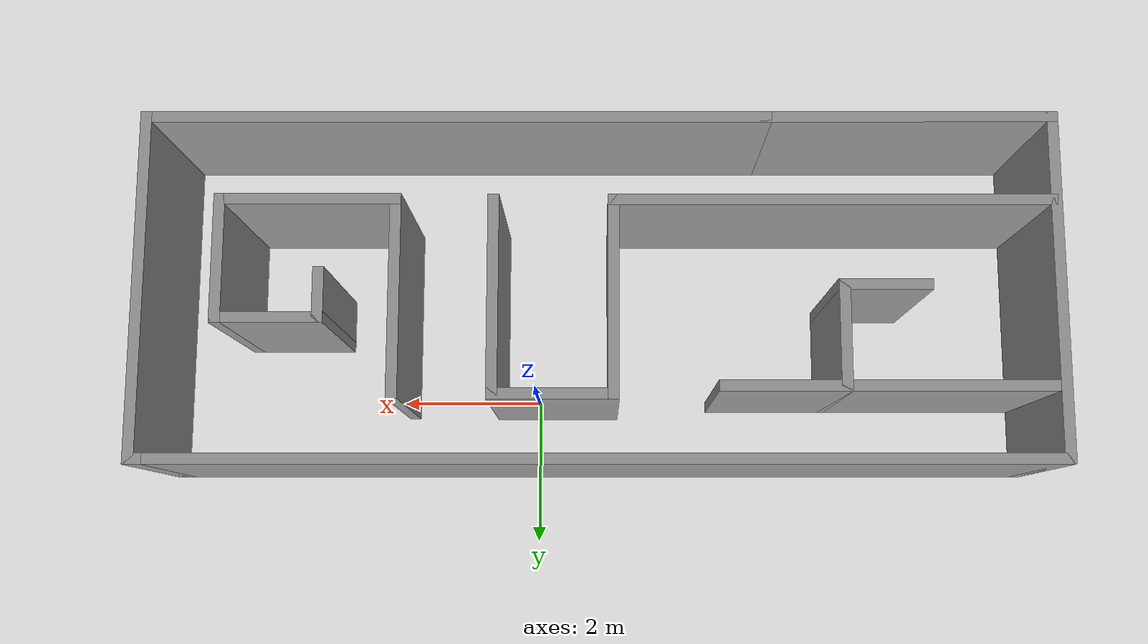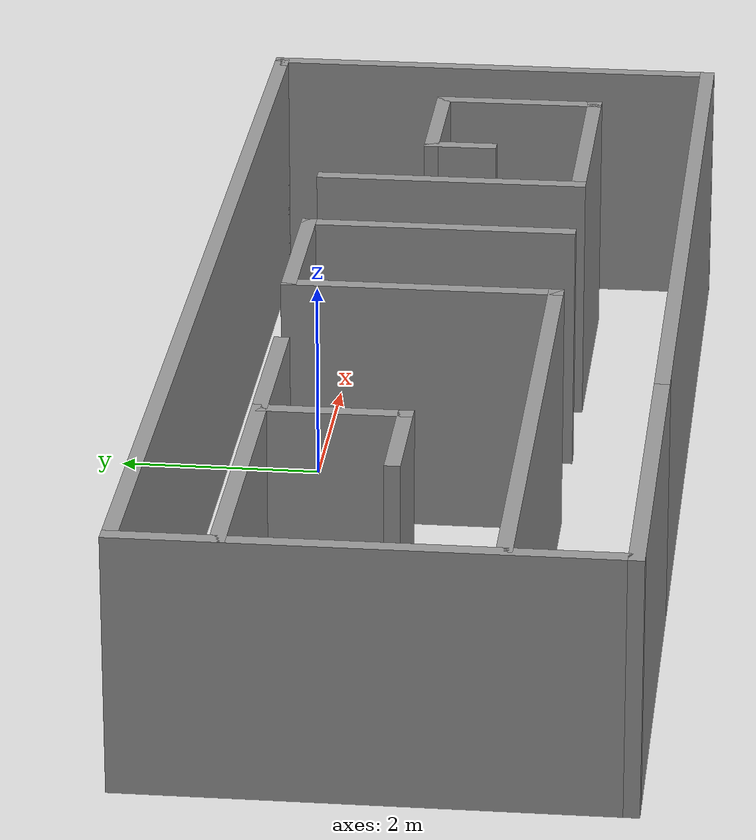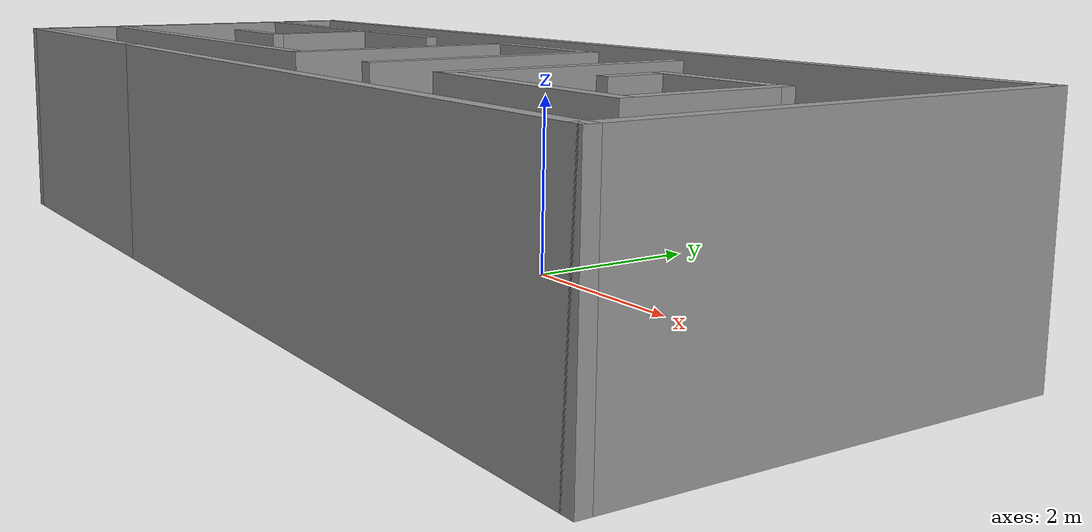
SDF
<?xml version='1.0'?>
<sdf version='1.7'>
  <model name='map1'>
    <pose>-0.87 -1.3 0 0 -0 0</pose>
    <link name='Wall_0'>
      <collision name='Wall_0_Collision'>
        <geometry>
          <box>
            <size>8.5 0.15 2.5</size>
          </box>
        </geometry>
        <pose>0 0 1.25 0 -0 0</pose>
      </collision>
      <visual name='Wall_0_Visual'>
        <pose>0 0 1.25 0 -0 0</pose>
        <geometry>
          <box>
            <size>8.5 0.15 2.5</size>
          </box>
        </geometry>
        <material>
          <script>
            <uri>file://media/materials/scripts/gazebo.material</uri>
            <name>Gazebo/Grey</name>
          </script>
          <ambient>1 1 1 1</ambient>
        </material>
        <meta>
          <layer>0</layer>
        </meta>
      </visual>
      <pose>1.925 -2.3 0 0 -0 0</pose>
    </link>
    <link name='Wall_10'>
      <collision name='Wall_10_Collision'>
        <geometry>
          <box>
            <size>1.25 0.15 2.5</size>
          </box>
        </geometry>
        <pose>0 0 1.25 0 -0 0</pose>
      </collision>
      <visual name='Wall_10_Visual'>
        <pose>0 0 1.25 0 -0 0</pose>
        <geometry>
          <box>
            <size>1.25 0.15 2.5</size>
          </box>
        </geometry>
        <material>
          <script>
            <uri>file://media/materials/scripts/gazebo.material</uri>
            <name>Gazebo/Grey</name>
          </script>
          <ambient>1 1 1 1</ambient>
        </material>
        <meta>
          <layer>0</layer>
        </meta>
      </visual>
      <pose>-3.79215 -0.00155 0 0 -0 3.14159</pose>
    </link>
    <link name='Wall_12'>
      <collision name='Wall_12_Collision'>
        <geometry>
          <box>
            <size>6 0.15 2.5</size>
          </box>
        </geometry>
        <pose>0 0 1.25 0 -0 0</pose>
      </collision>
      <visual name='Wall_12_Visual'>
        <pose>0 0 1.25 0 -0 0</pose>
        <geometry>
          <box>
            <size>6 0.15 2.5</size>
          </box>
        </geometry>
        <material>
          <script>
            <uri>file://media/materials/scripts/gazebo.material</uri>
            <name>Gazebo/Grey</name>
          </script>
          <ambient>1 1 1 1</ambient>
        </material>
        <meta>
          <layer>0</layer>
        </meta>
      </visual>
      <pose>-3.11425 -1.15108 0 0 -0 0</pose>
    </link>
    <link name='Wall_13'>
      <collision name='Wall_13_Collision'>
        <geometry>
          <box>
            <size>2.75 0.15 2.5</size>
          </box>
        </geometry>
        <pose>0 0 1.25 0 -0 0</pose>
      </collision>
      <visual name='Wall_13_Visual'>
        <pose>0 0 1.25 0 -0 0</pose>
        <geometry>
          <box>
            <size>2.75 0.15 2.5</size>
          </box>
        </geometry>
        <material>
          <script>
            <uri>file://media/materials/scripts/gazebo.material</uri>
            <name>Gazebo/Grey</name>
          </script>
          <ambient>1 1 1 1</ambient>
        </material>
        <meta>
          <layer>0</layer>
        </meta>
      </visual>
      <pose>-0.18925 0.148925 0 0 -0 1.5708</pose>
    </link>
    <link name='Wall_14'>
      <collision name='Wall_14_Collision'>
        <geometry>
          <box>
            <size>1.75 0.15 2.5</size>
          </box>
        </geometry>
        <pose>0 0 1.25 0 -0 0</pose>
      </collision>
      <visual name='Wall_14_Visual'>
        <pose>0 0 1.25 0 -0 0</pose>
        <geometry>
          <box>
            <size>1.75 0.15 2.5</size>
          </box>
        </geometry>
        <material>
          <script>
            <uri>file://media/materials/scripts/gazebo.material</uri>
            <name>Gazebo/Grey</name>
          </script>
          <ambient>1 1 1 1</ambient>
        </material>
        <meta>
          <layer>0</layer>
        </meta>
      </visual>
      <pose>0.61075 1.44893 0 0 -0 0</pose>
    </link>
    <link name='Wall_15'>
      <collision name='Wall_15_Collision'>
        <geometry>
          <box>
            <size>2.75 0.15 2.5</size>
          </box>
        </geometry>
        <pose>0 0 1.25 0 -0 0</pose>
      </collision>
      <visual name='Wall_15_Visual'>
        <pose>0 0 1.25 0 -0 0</pose>
        <geometry>
          <box>
            <size>2.75 0.15 2.5</size>
          </box>
        </geometry>
        <material>
          <script>
            <uri>file://media/materials/scripts/gazebo.material</uri>
            <name>Gazebo/Grey</name>
          </script>
          <ambient>1 1 1 1</ambient>
        </material>
        <meta>
          <layer>0</layer>
        </meta>
      </visual>
      <pose>1.41075 0.148925 0 0 -0 -1.5708</pose>
    </link>
    <link name='Wall_17'>
      <collision name='Wall_17_Collision'>
        <geometry>
          <box>
            <size>1.75 0.15 2.5</size>
          </box>
        </geometry>
        <pose>0 0 1.25 0 -0 0</pose>
      </collision>
      <visual name='Wall_17_Visual'>
        <pose>0 0 1.25 0 -0 0</pose>
        <geometry>
          <box>
            <size>1.75 0.15 2.5</size>
          </box>
        </geometry>
        <material>
          <script>
            <uri>file://media/materials/scripts/gazebo.material</uri>
            <name>Gazebo/Grey</name>
          </script>
          <ambient>1 1 1 1</ambient>
        </material>
        <meta>
          <layer>0</layer>
        </meta>
      </visual>
      <pose>-2.44215 1.34845 0 0 -0 0</pose>
    </link>
    <link name='Wall_19'>
      <collision name='Wall_19_Collision'>
        <geometry>
          <box>
            <size>2.75 0.15 2.5</size>
          </box>
        </geometry>
        <pose>0 0 1.25 0 -0 0</pose>
      </collision>
      <visual name='Wall_19_Visual'>
        <pose>0 0 1.25 0 -0 0</pose>
        <geometry>
          <box>
            <size>2.75 0.15 2.5</size>
          </box>
        </geometry>
        <material>
          <script>
            <uri>file://media/materials/scripts/gazebo.material</uri>
            <name>Gazebo/Grey</name>
          </script>
          <ambient>1 1 1 1</ambient>
        </material>
        <meta>
          <layer>0</layer>
        </meta>
      </visual>
      <pose>2.7157 0.141025 0 0 -0 -1.5708</pose>
    </link>
    <link name='Wall_2'>
      <collision name='Wall_2_Collision'>
        <geometry>
          <box>
            <size>4 0.15 2.5</size>
          </box>
        </geometry>
        <pose>0 0 1.25 0 -0 0</pose>
      </collision>
      <visual name='Wall_2_Visual'>
        <pose>0 0 1.25 0 -0 0</pose>
        <geometry>
          <box>
            <size>4 0.15 2.5</size>
          </box>
        </geometry>
        <material>
          <script>
            <uri>file://media/materials/scripts/gazebo.material</uri>
            <name>Gazebo/Grey</name>
          </script>
          <ambient>1 1 1 1</ambient>
        </material>
        <meta>
          <layer>0</layer>
        </meta>
      </visual>
      <pose>-4.175 -2.3 0 0 -0 3.14159</pose>
    </link>
    <link name='Wall_20'>
      <collision name='Wall_20_Collision'>
        <geometry>
          <box>
            <size>2.5 0.15 2.5</size>
          </box>
        </geometry>
        <pose>0 0 1.25 0 -0 0</pose>
      </collision>
      <visual name='Wall_20_Visual'>
        <pose>0 0 1.25 0 -0 0</pose>
        <geometry>
          <box>
            <size>2.5 0.15 2.5</size>
          </box>
        </geometry>
        <material>
          <script>
            <uri>file://media/materials/scripts/gazebo.material</uri>
            <name>Gazebo/Grey</name>
          </script>
          <ambient>1 1 1 1</ambient>
        </material>
        <meta>
          <layer>0</layer>
        </meta>
      </visual>
      <pose>3.8907 -1.15898 0 0 -0 0</pose>
    </link>
    <link name='Wall_21'>
      <collision name='Wall_21_Collision'>
        <geometry>
          <box>
            <size>1.75 0.15 2.5</size>
          </box>
        </geometry>
        <pose>0 0 1.25 0 -0 0</pose>
      </collision>
      <visual name='Wall_21_Visual'>
        <pose>0 0 1.25 0 -0 0</pose>
        <geometry>
          <box>
            <size>1.75 0.15 2.5</size>
          </box>
        </geometry>
        <material>
          <script>
            <uri>file://media/materials/scripts/gazebo.material</uri>
            <name>Gazebo/Grey</name>
          </script>
          <ambient>1 1 1 1</ambient>
        </material>
        <meta>
          <layer>0</layer>
        </meta>
      </visual>
      <pose>5.0657 -0.358975 0 0 -0 1.5708</pose>
    </link>
    <link name='Wall_22'>
      <collision name='Wall_22_Collision'>
        <geometry>
          <box>
            <size>1.5 0.15 2.5</size>
          </box>
        </geometry>
        <pose>0 0 1.25 0 -0 0</pose>
      </collision>
      <visual name='Wall_22_Visual'>
        <pose>0 0 1.25 0 -0 0</pose>
        <geometry>
          <box>
            <size>1.5 0.15 2.5</size>
          </box>
        </geometry>
        <material>
          <script>
            <uri>file://media/materials/scripts/gazebo.material</uri>
            <name>Gazebo/Grey</name>
          </script>
          <ambient>1 1 1 1</ambient>
        </material>
        <meta>
          <layer>0</layer>
        </meta>
      </visual>
      <pose>4.3907 0.441025 0 0 -0 3.14159</pose>
    </link>
    <link name='Wall_23'>
      <collision name='Wall_23_Collision'>
        <geometry>
          <box>
            <size>0.75 0.15 2.5</size>
          </box>
        </geometry>
        <pose>0 0 1.25 0 -0 0</pose>
      </collision>
      <visual name='Wall_23_Visual'>
        <pose>0 0 1.25 0 -0 0</pose>
        <geometry>
          <box>
            <size>0.75 0.15 2.5</size>
          </box>
        </geometry>
        <material>
          <script>
            <uri>file://media/materials/scripts/gazebo.material</uri>
            <name>Gazebo/Grey</name>
          </script>
          <ambient>1 1 1 1</ambient>
        </material>
        <meta>
          <layer>0</layer>
        </meta>
      </visual>
      <pose>3.7157 0.141025 0 0 -0 -1.5708</pose>
    </link>
    <link name='Wall_3'>
      <collision name='Wall_3_Collision'>
        <geometry>
          <box>
            <size>4.75 0.15 2.5</size>
          </box>
        </geometry>
        <pose>0 0 1.25 0 -0 0</pose>
      </collision>
      <visual name='Wall_3_Visual'>
        <pose>0 0 1.25 0 -0 0</pose>
        <geometry>
          <box>
            <size>4.75 0.15 2.5</size>
          </box>
        </geometry>
        <material>
          <script>
            <uri>file://media/materials/scripts/gazebo.material</uri>
            <name>Gazebo/Grey</name>
          </script>
          <ambient>1 1 1 1</ambient>
        </material>
        <meta>
          <layer>0</layer>
        </meta>
      </visual>
      <pose>-6.1 0 0 0 -0 1.5708</pose>
    </link>
    <link name='Wall_4'>
      <collision name='Wall_4_Collision'>
        <geometry>
          <box>
            <size>12.25 0.15 2.5</size>
          </box>
        </geometry>
        <pose>0 0 1.25 0 -0 0</pose>
      </collision>
      <visual name='Wall_4_Visual'>
        <pose>0 0 1.25 0 -0 0</pose>
        <geometry>
          <box>
            <size>12.25 0.15 2.5</size>
          </box>
        </geometry>
        <material>
          <script>
            <uri>file://media/materials/scripts/gazebo.material</uri>
            <name>Gazebo/Grey</name>
          </script>
          <ambient>1 1 1 1</ambient>
        </material>
        <meta>
          <layer>0</layer>
        </meta>
      </visual>
      <pose>-0.05 2.3 0 0 -0 0</pose>
    </link>
    <link name='Wall_5'>
      <collision name='Wall_5_Collision'>
        <geometry>
          <box>
            <size>0.25 0.15 2.5</size>
          </box>
        </geometry>
        <pose>0 0 1.25 0 -0 0</pose>
      </collision>
      <visual name='Wall_5_Visual'>
        <pose>0 0 1.25 0 -0 0</pose>
        <geometry>
          <box>
            <size>0.25 0.15 2.5</size>
          </box>
        </geometry>
        <material>
          <script>
            <uri>file://media/materials/scripts/gazebo.material</uri>
            <name>Gazebo/Grey</name>
          </script>
          <ambient>1 1 1 1</ambient>
        </material>
        <meta>
          <layer>0</layer>
        </meta>
      </visual>
      <pose>6.05 2.3 0 0 -0 0</pose>
    </link>
    <link name='Wall_6'>
      <collision name='Wall_6_Collision'>
        <geometry>
          <box>
            <size>4.75 0.15 2.5</size>
          </box>
        </geometry>
        <pose>0 0 1.25 0 -0 0</pose>
      </collision>
      <visual name='Wall_6_Visual'>
        <pose>0 0 1.25 0 -0 0</pose>
        <geometry>
          <box>
            <size>4.75 0.15 2.5</size>
          </box>
        </geometry>
        <material>
          <script>
            <uri>file://media/materials/scripts/gazebo.material</uri>
            <name>Gazebo/Grey</name>
          </script>
          <ambient>1 1 1 1</ambient>
        </material>
        <meta>
          <layer>0</layer>
        </meta>
      </visual>
      <pose>6.1 0 0 0 -0 -1.5708</pose>
    </link>
    <link name='Wall_8'>
      <collision name='Wall_8_Collision'>
        <geometry>
          <box>
            <size>3 0.15 2.5</size>
          </box>
        </geometry>
        <pose>0 0 1.25 0 -0 0</pose>
      </collision>
      <visual name='Wall_8_Visual'>
        <pose>0 0 1.25 0 -0 0</pose>
        <geometry>
          <box>
            <size>3 0.15 2.5</size>
          </box>
        </geometry>
        <material>
          <script>
            <uri>file://media/materials/scripts/gazebo.material</uri>
            <name>Gazebo/Grey</name>
          </script>
          <ambient>1 1 1 1</ambient>
        </material>
        <meta>
          <layer>0</layer>
        </meta>
      </visual>
      <pose>-4.66715 1.34845 0 0 -0 0</pose>
    </link>
    <link name='Wall_9'>
      <collision name='Wall_9_Collision'>
        <geometry>
          <box>
            <size>1.5 0.15 2.5</size>
          </box>
        </geometry>
        <pose>0 0 1.25 0 -0 0</pose>
      </collision>
      <visual name='Wall_9_Visual'>
        <pose>0 0 1.25 0 -0 0</pose>
        <geometry>
          <box>
            <size>1.5 0.15 2.5</size>
          </box>
        </geometry>
        <material>
          <script>
            <uri>file://media/materials/scripts/gazebo.material</uri>
            <name>Gazebo/Grey</name>
          </script>
          <ambient>1 1 1 1</ambient>
        </material>
        <meta>
          <layer>0</layer>
        </meta>
      </visual>
      <pose>-3.24215 0.67345 0 0 -0 -1.5708</pose>
    </link>
    <static>1</static>
  </model>
</sdf>
